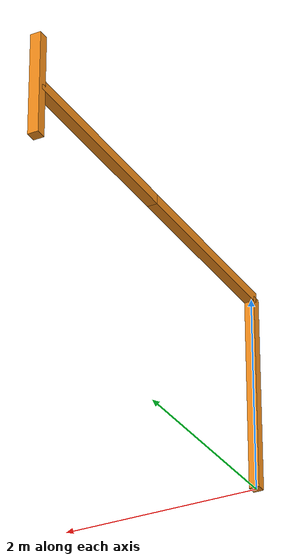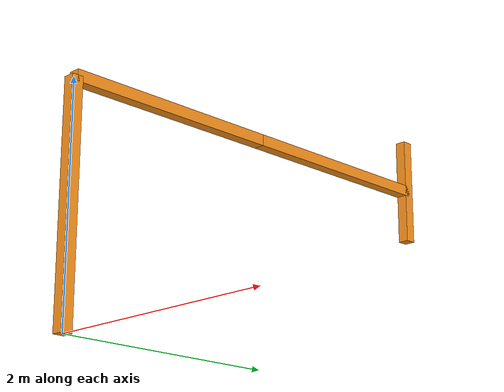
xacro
<?xml version = "1.0" ?>
<robot name = "my_robot" xmlns:xacro="http://www.ros.org/wiki/xacro">

  <!-- Constants for robot dimensions -->
  <xacro:property name="PI" value="3.1415926535897931"/>
  <xacro:property name="mass" value="1" /> <!-- arbitrary value for mass -->
  <xacro:property name="width" value="0.1" /> <!-- Square dimensions (widthxwidth) of beams -->
  <xacro:property name="height1" value="2" /> <!-- Link 1 -->
  <xacro:property name="height2" value="1" /> <!-- Link 2 -->
  <xacro:property name="height3" value="1" /> <!-- Link 3 -->
  <xacro:property name="camera_link" value="0.05" /> <!-- Size of square 'camera' box -->
  <xacro:property name="axel_offset" value="0.05" /> <!-- Space btw top of beam and the each joint -->

  <!-- Import all Gazebo-customization elements, including Gazebo colors -->
  <xacro:include filename="$(find rrbot_description)/urdf/rrbot.gazebo" />
  <!-- Import Rviz colors -->
  <xacro:include filename="$(find rrbot_description)/urdf/materials.xacro" />

  <!-- Used for fixing robot to Gazebo 'base_link' -->
  <link name="world"/>

  <joint name="joint1" type="continuous">
    <parent link="world"/>
    <child link="link1"/>
    <limit effort="3.0" velocity="2.0" />
    <dynamics damping="0.5" friction="0.5"/>
    <origin xyz="0 0 0" rpy="0 0 0"/>
    <axis xyz="0 0 1"/>
  </joint>

  <link name="link1">
    <collision>
      <origin xyz="0 0 ${height1/2}" rpy="0 0 0"/>
      <geometry>
	<box size="${width} ${width} ${height1}"/>
      </geometry>
    </collision>

    <visual>
      <origin xyz="0 0 ${height1/2}" rpy="0 0 0"/>
      <geometry>
	<box size="${width} ${width} ${height1}"/>
      </geometry>
      <material name="orange"/>
    </visual>

    <inertial>
      <origin xyz="0 0 ${height1/2}" rpy="0 0 0"/>
      <mass value="${mass}"/>
      <inertia
	  ixx="${mass / 12.0 * (width*width + height1*height1)}" ixy="0.0" ixz="0.0"
	  iyy="${mass / 12.0 * (height1*height1 + width*width)}" iyz="0.0"
	  izz="${mass / 12.0 * (width*width + width*width)}"/>
    </inertial>
  </link>

  <joint name="joint_fixed" type="fixed">
    <parent link="link1"/>
    <child link="link2"/>
    <origin xyz="0 0 ${height1}" rpy="0 0 0"/>
    <axis xyz="0 1 0"/>
  </joint>

  <link name="link2">
    <collision>
      <origin xyz="0 ${height1/2} 0" rpy="${-PI/2} 0 0"/>
      <geometry>
	<box size="${width} ${width} ${height1}"/>
      </geometry>
    </collision>

    <visual>
      <origin xyz="0 ${height1/2} 0" rpy="${-PI/2} 0 0"/>
      <geometry>
	<box size="${width} ${width} ${height1}"/>
      </geometry>
      <material name="orange"/>
    </visual>

    <inertial>
      <origin xyz="0 ${height1/2} 0" rpy="${-PI/2} 0 0"/>
      <mass value="${mass}"/>
      <inertia
	  ixx="${mass / 12.0 * (width*width + height1*height1)}" ixy="0.0" ixz="0.0"
	  iyy="${mass / 12.0 * (height1*height1 + width*width)}" iyz="0.0"
	  izz="${mass / 12.0 * (width*width + width*width)}"/>
    </inertial>
  </link>

  <joint name="joint2" type="continuous">
    <parent link="link2"/>
    <child link="link3"/>
    <limit effort="3.0" velocity="2.0"/>
    <dynamics damping="0.5" friction="0.5" />
    <origin xyz="0 ${height1} 0" rpy="0 0 0"/>
    <axis xyz="0 0 1"/>
  </joint>

  <link name="link3">
    <collision>
      <origin xyz="0 ${height1/2} 0" rpy="${-PI/2} 0 0"/>
      <geometry>
	<box size="${width} ${width} ${height1}"/>
      </geometry>
    </collision>

    <visual>
      <origin xyz="0 ${height1/2} 0" rpy="${-PI/2} 0 0"/>
      <geometry>
	<box size="${width} ${width} ${height1}"/>
      </geometry>
      <material name="orange"/>
    </visual>

    <inertial>
      <origin xyz="0 ${height1/2} 0" rpy="${-PI/2} 0 0"/>
      <mass value="${mass}"/>
      <inertia
	  ixx="${mass / 12.0 * (width*width + height1*height1)}" ixy="0.0" ixz="0.0"
	  iyy="${mass / 12.0 * (height1*height1 + width*width)}" iyz="0.0"
	  izz="${mass / 12.0 * (width*width + width*width)}"/>
    </inertial>
  </link>

  <joint name="joint3" type="prismatic">
    <parent link="link3"/>
    <child link="link4"/>
    <limit effort="0.1"  lower="0" upper="0.5" velocity="5.0"/>
    <dynamics damping="0.1" friction="0.1"/>
    <origin xyz="0 ${height1} 0" rpy="0 0 0"/>
    <axis xyz="0 0 -1"/>
  </joint>

  <link name="link4">
    <collision>
      <origin xyz="0 0 0" rpy="${PI} 0 0"/>
      <geometry>
	<box size="${width} ${width} ${height2}"/>
      </geometry>
    </collision>

    <visual>
      <origin xyz="0 0 0" rpy="${PI} 0 0"/>
      <geometry>
	<box size="${width} ${width} ${height2}"/>
      </geometry>
      <material name="orange"/>
    </visual>

    <inertial>
      <origin xyz="0 0 0" rpy="${PI} 0 0"/>
      <mass value="${mass}"/>
      <inertia
	  ixx="${mass / 24.0 * (width*width + height2*height2)}" ixy="0.0" ixz="0.0"
	  iyy="${mass / 24.0 * (height2*height2 + width*width)}" iyz="0.0"
	  izz="${mass / 24.0 * (width*width + width*width)}"/>
    </inertial>
  </link>

  <!-- Turning self - collision on for the entire robot -->

  <!-- ROS Control Plugin for Gazebo -->
  <gazebo>
    <plugin name="gazebo_ros_control" filename ="libgazebo_ros_control.so">
      <robotNamespace>/simple_model</robotNamespace>
    </plugin>
  </gazebo>

  <transmission name="tran1">
    <type>transmission_interface/SimpleTransmission</type>
    <actuator name="motor1">
      <mechanicalReduction>1</mechanicalReduction>
    </actuator>
    <joint name="joint1">
      <hardwareInterface>hardware_interface/EffortJointInterface</hardwareInterface>
    </joint>
  </transmission>

  <transmission name="tran2">
    <type>transmission_interface/SimpleTransmission</type>
    <actuator name="motor2">
      <mechanicalReduction>1</mechanicalReduction>
    </actuator>
    <joint name="joint2">
      <hardwareInterface>hardware_interface/EffortJointInterface</hardwareInterface>
    </joint>
  </transmission>

  <transmission name="tran3">
    <type>transmission_interface/SimpleTransmission</type>
    <actuator name="motor3">
      <mechanicalReduction>1</mechanicalReduction>
    </actuator>
    <joint name="joint3">
      <hardwareInterface>hardware_interface/EffortJointInterface</hardwareInterface>
    </joint>
  </transmission>

</robot>
